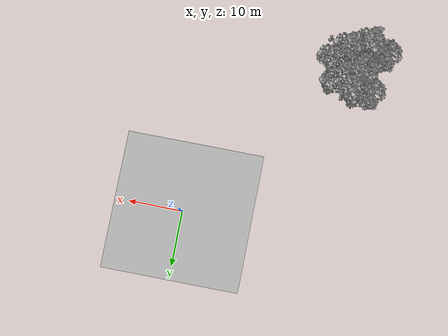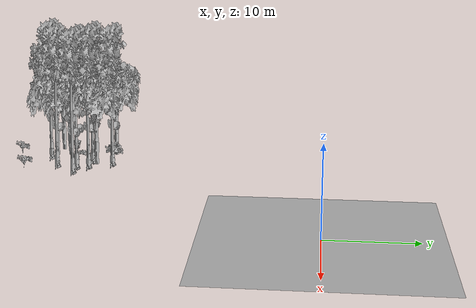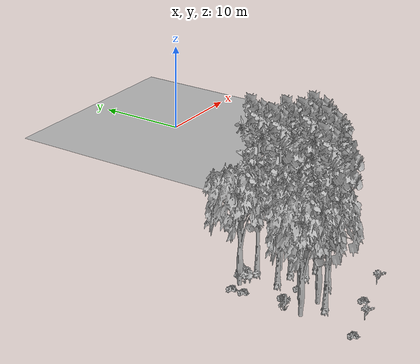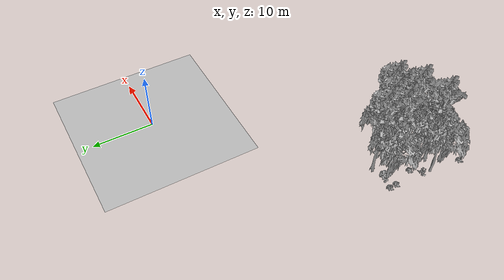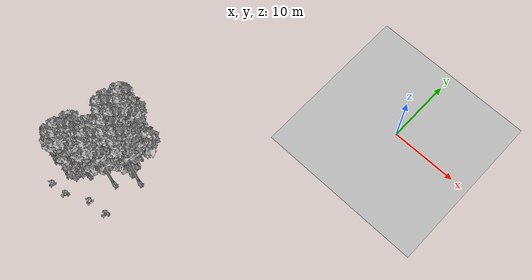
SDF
<sdf version="1.7">
 <world name="default">
  <model name="ground_plane">
   <static>1</static>
   <link name="link">
    <collision name="collision">
     <pose>-50 0 0 0 -0 0</pose>
     <geometry><plane><normal>0 0 1</normal><size>80 80</size></plane></geometry>
     <surface><contact><ode><min_depth>0.01</min_depth><max_vel>0</max_vel></ode></contact></surface>
    </collision>
    <visual name="grass">
     <cast_shadows>0</cast_shadows>
     <geometry>
      <mesh>
       <scale>0.46714285714285714 0.46714285714285714 0.1</scale>
       <uri>file://grass_plane/meshes/grass_plane.dae</uri>
      </mesh>
     </geometry>
    </visual>
   </link>
  </model>
  <model name="Tree 160">
   <static>1</static>
   <pose>-23.11131771988834 -28.654293044035548 0 1.57079 -0 0</pose>
   <link name="link">
    <collision name="collision">
     <geometry><mesh><scale>3.5 5 3.5</scale><uri>model://tree_9/meshes/tree_9.obj</uri></mesh></geometry>
    </collision>
    <visual name="visual">
     <geometry><mesh><scale>3.5 5 3.5</scale><uri>model://tree_9/meshes/tree_9.obj</uri></mesh></geometry>
    </visual>
   </link>
  </model>
  <model name="Tree 230">
   <static>1</static>
   <pose>-23.32091888224483 -32.65090960620337 0 1.57079 -0 0</pose>
   <link name="link">
    <collision name="collision">
     <geometry><mesh><scale>3.5 5 3.5</scale><uri>model://tree_9/meshes/tree_9.obj</uri></mesh></geometry>
    </collision>
    <visual name="visual">
     <geometry><mesh><scale>3.5 5 3.5</scale><uri>model://tree_9/meshes/tree_9.obj</uri></mesh></geometry>
    </visual>
   </link>
  </model>
  <model name="Tree 267">
   <static>1</static>
   <pose>-22.760047351824046 -30.059762269318124 0 1.57079 -0 0</pose>
   <link name="link">
    <collision name="collision">
     <geometry><mesh><scale>3.5 5 3.5</scale><uri>model://tree_9/meshes/tree_9.obj</uri></mesh></geometry>
    </collision>
    <visual name="visual">
     <geometry><mesh><scale>3.5 5 3.5</scale><uri>model://tree_9/meshes/tree_9.obj</uri></mesh></geometry>
    </visual>
   </link>
  </model>
  <model name="Tree 276">
   <static>1</static>
   <pose>-27.724856162003462 -25.960820123359927 0 1.57079 -0 0</pose>
   <link name="link">
    <collision name="collision">
     <geometry><mesh><scale>3.5 5 3.5</scale><uri>model://tree_2/meshes/tree_2.obj</uri></mesh></geometry>
    </collision>
    <visual name="visual">
     <geometry><mesh><scale>3.5 5 3.5</scale><uri>model://tree_2/meshes/tree_2.obj</uri></mesh></geometry>
    </visual>
   </link>
  </model>
  <model name="Tree 290">
   <static>1</static>
   <pose>-24.51595307265871 -25.91865335954389 0 1.57079 -0 0</pose>
   <link name="link">
    <collision name="collision">
     <geometry><mesh><scale>3.5 5 3.5</scale><uri>model://tree_9/meshes/tree_9.obj</uri></mesh></geometry>
    </collision>
    <visual name="visual">
     <geometry><mesh><scale>3.5 5 3.5</scale><uri>model://tree_9/meshes/tree_9.obj</uri></mesh></geometry>
    </visual>
   </link>
  </model>
  <model name="Tree 375">
   <static>1</static>
   <pose>-29.35766119741618 -33.148711627371085 0 1.57079 -0 0</pose>
   <link name="link">
    <collision name="collision">
     <geometry><mesh><scale>3.5 5 3.5</scale><uri>model://tree_2/meshes/tree_2.obj</uri></mesh></geometry>
    </collision>
    <visual name="visual">
     <geometry><mesh><scale>3.5 5 3.5</scale><uri>model://tree_2/meshes/tree_2.obj</uri></mesh></geometry>
    </visual>
   </link>
  </model>
  <model name="Tree 449">
   <static>1</static>
   <pose>-27.06787173214626 -31.788632969871298 0 1.57079 -0 0</pose>
   <link name="link">
    <collision name="collision">
     <geometry><mesh><scale>3.5 5 3.5</scale><uri>model://tree_2/meshes/tree_2.obj</uri></mesh></geometry>
    </collision>
    <visual name="visual">
     <geometry><mesh><scale>3.5 5 3.5</scale><uri>model://tree_2/meshes/tree_2.obj</uri></mesh></geometry>
    </visual>
   </link>
  </model>
  <model name="Tree 468">
   <static>1</static>
   <pose>-25.3193464502081 -28.57151467344803 0 1.57079 -0 0</pose>
   <link name="link">
    <collision name="collision">
     <geometry><mesh><scale>3.5 5 3.5</scale><uri>model://tree_9/meshes/tree_9.obj</uri></mesh></geometry>
    </collision>
    <visual name="visual">
     <geometry><mesh><scale>3.5 5 3.5</scale><uri>model://tree_9/meshes/tree_9.obj</uri></mesh></geometry>
    </visual>
   </link>
  </model>
  <model name="Tree 510">
   <static>1</static>
   <pose>-20.898642170864782 -30.13076953386511 0 1.57079 -0 0</pose>
   <link name="link">
    <collision name="collision">
     <geometry><mesh><scale>3.5 5 3.5</scale><uri>model://tree_9/meshes/tree_9.obj</uri></mesh></geometry>
    </collision>
    <visual name="visual">
     <geometry><mesh><scale>3.5 5 3.5</scale><uri>model://tree_9/meshes/tree_9.obj</uri></mesh></geometry>
    </visual>
   </link>
  </model>
  <model name="Tree 558">
   <static>1</static>
   <pose>-26.686627126374997 -33.38226728322627 0 1.57079 -0 0</pose>
   <link name="link">
    <collision name="collision">
     <geometry><mesh><scale>3.5 5 3.5</scale><uri>model://tree_2/meshes/tree_2.obj</uri></mesh></geometry>
    </collision>
    <visual name="visual">
     <geometry><mesh><scale>3.5 5 3.5</scale><uri>model://tree_2/meshes/tree_2.obj</uri></mesh></geometry>
    </visual>
   </link>
  </model>
  <model name="Tree 567">
   <static>1</static>
   <pose>-26.805327976425836 -34.21984579237634 0 1.57079 -0 0</pose>
   <link name="link">
    <collision name="collision">
     <geometry><mesh><scale>3.5 5 3.5</scale><uri>model://tree_9/meshes/tree_9.obj</uri></mesh></geometry>
    </collision>
    <visual name="visual">
     <geometry><mesh><scale>3.5 5 3.5</scale><uri>model://tree_9/meshes/tree_9.obj</uri></mesh></geometry>
    </visual>
   </link>
  </model>
  <model name="Tree 571">
   <static>1</static>
   <pose>-23.34395359494485 -27.622820055771946 0 1.57079 -0 0</pose>
   <link name="link">
    <collision name="collision">
     <geometry><mesh><scale>3.5 5 3.5</scale><uri>model://tree_2/meshes/tree_2.obj</uri></mesh></geometry>
    </collision>
    <visual name="visual">
     <geometry><mesh><scale>3.5 5 3.5</scale><uri>model://tree_2/meshes/tree_2.obj</uri></mesh></geometry>
    </visual>
   </link>
  </model>
  <model name="Bush 15">
   <static>1</static>
   <pose>-24.170704673173866 -36.6156335883825 0 1.57079 -0 0</pose>
   <link name="link">
    <collision name="collision">
     <geometry><mesh><scale>2 2 2</scale><uri>model://bush_2/meshes/bush_2.obj</uri></mesh></geometry>
     <surface><contact><collide_without_contact>false</collide_without_contact></contact></surface>
    </collision>
    <visual name="visual">
     <geometry><mesh><scale>2 2 2</scale><uri>model://bush_2/meshes/bush_2.obj</uri></mesh></geometry>
    </visual>
   </link>
  </model>
  <model name="Bush 18">
   <static>1</static>
   <pose>-20.679353112096642 -36.18241252136791 0 1.57079 -0 0</pose>
   <link name="link">
    <collision name="collision">
     <geometry><mesh><scale>2 2 2</scale><uri>model://bush_5/meshes/bush_5.obj</uri></mesh></geometry>
     <surface><contact><collide_without_contact>false</collide_without_contact></contact></surface>
    </collision>
    <visual name="visual">
     <geometry><mesh><scale>2 2 2</scale><uri>model://bush_5/meshes/bush_5.obj</uri></mesh></geometry>
    </visual>
   </link>
  </model>
  <model name="Bush 29">
   <static>1</static>
   <pose>-26.850680447399657 -26.553797828237833 0 1.57079 -0 0</pose>
   <link name="link">
    <collision name="collision">
     <geometry><mesh><scale>2 2 2</scale><uri>model://bush_0/meshes/bush_0.obj</uri></mesh></geometry>
     <surface><contact><collide_without_contact>false</collide_without_contact></contact></surface>
    </collision>
    <visual name="visual">
     <geometry><mesh><scale>2 2 2</scale><uri>model://bush_0/meshes/bush_0.obj</uri></mesh></geometry>
    </visual>
   </link>
  </model>
  <model name="Bush 130">
   <static>1</static>
   <pose>-27.189815663517646 -26.243457986871206 0 1.57079 -0 0</pose>
   <link name="link">
    <collision name="collision">
     <geometry><mesh><scale>2 2 2</scale><uri>model://bush_1/meshes/bush_1.obj</uri></mesh></geometry>
     <surface><contact><collide_without_contact>false</collide_without_contact></contact></surface>
    </collision>
    <visual name="visual">
     <geometry><mesh><scale>2 2 2</scale><uri>model://bush_1/meshes/bush_1.obj</uri></mesh></geometry>
    </visual>
   </link>
  </model>
  <model name="Bush 200">
   <static>1</static>
   <pose>-28.87600457490108 -27.089081530900945 0 1.57079 -0 0</pose>
   <link name="link">
    <collision name="collision">
     <geometry><mesh><scale>2 2 2</scale><uri>model://bush_2/meshes/bush_2.obj</uri></mesh></geometry>
     <surface><contact><collide_without_contact>false</collide_without_contact></contact></surface>
    </collision>
    <visual name="visual">
     <geometry><mesh><scale>2 2 2</scale><uri>model://bush_2/meshes/bush_2.obj</uri></mesh></geometry>
    </visual>
   </link>
  </model>
  <model name="Bush 271">
   <static>1</static>
   <pose>-29.834561859145452 -38.48275154137294 0 1.57079 -0 0</pose>
   <link name="link">
    <collision name="collision">
     <geometry><mesh><scale>2 2 2</scale><uri>model://bush_2/meshes/bush_2.obj</uri></mesh></geometry>
     <surface><contact><collide_without_contact>false</collide_without_contact></contact></surface>
    </collision>
    <visual name="visual">
     <geometry><mesh><scale>2 2 2</scale><uri>model://bush_2/meshes/bush_2.obj</uri></mesh></geometry>
    </visual>
   </link>
  </model>
  <model name="Bush 291">
   <static>1</static>
   <pose>-29.266312673321956 -31.547724660586105 0 1.57079 -0 0</pose>
   <link name="link">
    <collision name="collision">
     <geometry><mesh><scale>2 2 2</scale><uri>model://bush_4/meshes/bush_4.obj</uri></mesh></geometry>
     <surface><contact><collide_without_contact>false</collide_without_contact></contact></surface>
    </collision>
    <visual name="visual">
     <geometry><mesh><scale>2 2 2</scale><uri>model://bush_4/meshes/bush_4.obj</uri></mesh></geometry>
    </visual>
   </link>
  </model>
  <model name="Bush 351">
   <static>1</static>
   <pose>-26.824779329001707 -38.057985470373445 0 1.57079 -0 0</pose>
   <link name="link">
    <collision name="collision">
     <geometry><mesh><scale>2 2 2</scale><uri>model://bush_5/meshes/bush_5.obj</uri></mesh></geometry>
     <surface><contact><collide_without_contact>false</collide_without_contact></contact></surface>
    </collision>
    <visual name="visual">
     <geometry><mesh><scale>2 2 2</scale><uri>model://bush_5/meshes/bush_5.obj</uri></mesh></geometry>
    </visual>
   </link>
  </model>
  <model name="Bush 384">
   <static>1</static>
   <pose>-25.57307358164077 -30.866728185967354 0 1.57079 -0 0</pose>
   <link name="link">
    <collision name="collision">
     <geometry><mesh><scale>2 2 2</scale><uri>model://bush_2/meshes/bush_2.obj</uri></mesh></geometry>
     <surface><contact><collide_without_contact>false</collide_without_contact></contact></surface>
    </collision>
    <visual name="visual">
     <geometry><mesh><scale>2 2 2</scale><uri>model://bush_2/meshes/bush_2.obj</uri></mesh></geometry>
    </visual>
   </link>
  </model>
  <model name="Bush 424">
   <static>1</static>
   <pose>-27.72563018541692 -30.480231152908992 0 1.57079 -0 0</pose>
   <link name="link">
    <collision name="collision">
     <geometry><mesh><scale>2 2 2</scale><uri>model://bush_2/meshes/bush_2.obj</uri></mesh></geometry>
     <surface><contact><collide_without_contact>false</collide_without_contact></contact></surface>
    </collision>
    <visual name="visual">
     <geometry><mesh><scale>2 2 2</scale><uri>model://bush_2/meshes/bush_2.obj</uri></mesh></geometry>
    </visual>
   </link>
  </model>
  <model name="Bush 469">
   <static>1</static>
   <pose>-28.933745881066805 -25.907440173221907 0 1.57079 -0 0</pose>
   <link name="link">
    <collision name="collision">
     <geometry><mesh><scale>2 2 2</scale><uri>model://bush_2/meshes/bush_2.obj</uri></mesh></geometry>
     <surface><contact><collide_without_contact>false</collide_without_contact></contact></surface>
    </collision>
    <visual name="visual">
     <geometry><mesh><scale>2 2 2</scale><uri>model://bush_2/meshes/bush_2.obj</uri></mesh></geometry>
    </visual>
   </link>
  </model>
 </world>
</sdf>
